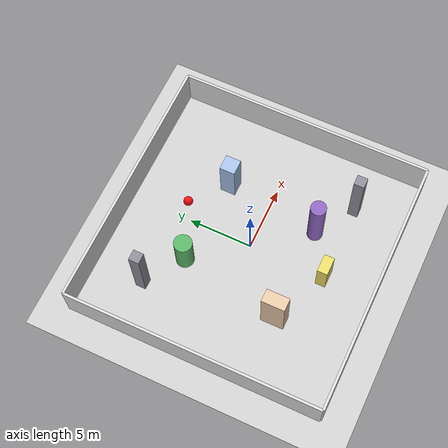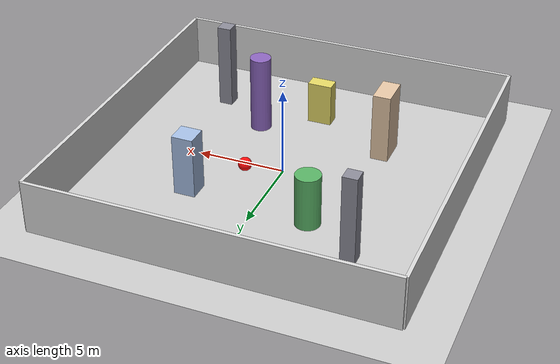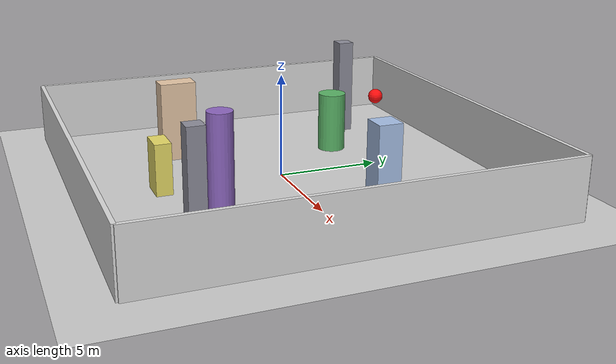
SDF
<?xml version="1.0" ?>
<sdf version="1.6">
  <world name="three_aerial_world">
    <gravity>0 0 -9.8</gravity>

    <scene>
      <ambient>0.55 0.55 0.55 1.0</ambient>
      <background>0.80 0.90 1.00 1.0</background>
      <shadows>true</shadows>
    </scene>

    <include>
      <uri>model://ground_plane</uri>
    </include>

    <include>
      <uri>model://sun</uri>
    </include>

    <physics type="ode">
      <real_time_update_rate>1000.0</real_time_update_rate>
      <max_step_size>0.001</max_step_size>
      <real_time_factor>1.0</real_time_factor>
    </physics>

    <plugin name="gazebo_ros_state" filename="libgazebo_ros_state.so">
      <ros>
        <namespace>/gazebo</namespace>
      </ros>
      <update_rate>50.0</update_rate>
    </plugin>

    <!-- Fence walls: 20 m x 20 m arena, 1.5 m tall                       -->

    <model name="wall_north">
      <static>true</static>
      <pose>0 10 1.5 0 0 0</pose>
      <link name="link">
        <collision name="collision">
          <geometry><box><size>20 0.2 3.0</size></box></geometry>
        </collision>
        <visual name="visual">
          <geometry><box><size>20 0.2 3.0</size></box></geometry>
          <material>
            <ambient>0.85 0.85 0.85 1.0</ambient>
            <diffuse>0.85 0.85 0.85 1.0</diffuse>
          </material>
        </visual>
      </link>
    </model>

    <model name="wall_south">
      <static>true</static>
      <pose>0 -10 1.5 0 0 0</pose>
      <link name="link">
        <collision name="collision">
          <geometry><box><size>20 0.2 3.0</size></box></geometry>
        </collision>
        <visual name="visual">
          <geometry><box><size>20 0.2 3.0</size></box></geometry>
          <material>
            <ambient>0.85 0.85 0.85 1.0</ambient>
            <diffuse>0.85 0.85 0.85 1.0</diffuse>
          </material>
        </visual>
      </link>
    </model>

    <model name="wall_east">
      <static>true</static>
      <pose>10 0 1.5 0 0 0</pose>
      <link name="link">
        <collision name="collision">
          <geometry><box><size>0.2 20 3.0</size></box></geometry>
        </collision>
        <visual name="visual">
          <geometry><box><size>0.2 20 3.0</size></box></geometry>
          <material>
            <ambient>0.85 0.85 0.85 1.0</ambient>
            <diffuse>0.85 0.85 0.85 1.0</diffuse>
          </material>
        </visual>
      </link>
    </model>

    <model name="wall_west">
      <static>true</static>
      <pose>-10 0 1.5 0 0 0</pose>
      <link name="link">
        <collision name="collision">
          <geometry><box><size>0.2 20 3.0</size></box></geometry>
        </collision>
        <visual name="visual">
          <geometry><box><size>0.2 20 3.0</size></box></geometry>
          <material>
            <ambient>0.85 0.85 0.85 1.0</ambient>
            <diffuse>0.85 0.85 0.85 1.0</diffuse>
          </material>
        </visual>
      </link>
    </model>

    <!-- Obstacles                                                         -->
    <!-- IMPORTANT: the launch file contains a hard-coded copy of each    -->
    <!-- obstacle footprint (x, y, safe_radius) for random drone spawn    -->
    <!-- collision avoidance. Keep the two in sync!                        -->

    <!-- The red target is at z=3.5, so some obstacles are taller than it
         (force lateral detour) and some are shorter (could fly over). -->

    <model name="obstacle_block_blue">
      <static>true</static>
      <pose>4.0 3.5 1.75 0 0 0</pose>
      <link name="link">
        <collision name="collision">
          <geometry><box><size>1.2 1.2 3.5</size></box></geometry>
        </collision>
        <visual name="visual">
          <geometry><box><size>1.2 1.2 3.5</size></box></geometry>
          <material>
            <ambient>0.65 0.75 0.90 1.0</ambient>
            <diffuse>0.65 0.75 0.90 1.0</diffuse>
          </material>
        </visual>
      </link>
    </model>

    <model name="obstacle_block_orange">
      <static>true</static>
      <pose>-4.5 -4.0 2.0 0 0 0</pose>
      <link name="link">
        <collision name="collision">
          <geometry><box><size>1.0 1.8 4.0</size></box></geometry>
        </collision>
        <visual name="visual">
          <geometry><box><size>1.0 1.8 4.0</size></box></geometry>
          <material>
            <ambient>0.90 0.78 0.65 1.0</ambient>
            <diffuse>0.90 0.78 0.65 1.0</diffuse>
          </material>
        </visual>
      </link>
    </model>

    <model name="obstacle_cylinder_green">
      <static>true</static>
      <pose>-3.0 4.0 1.5 0 0 0</pose>
      <link name="link">
        <collision name="collision">
          <geometry><cylinder><radius>0.7</radius><length>3.0</length></cylinder></geometry>
        </collision>
        <visual name="visual">
          <geometry><cylinder><radius>0.7</radius><length>3.0</length></cylinder></geometry>
          <material>
            <ambient>0.35 0.70 0.40 1.0</ambient>
            <diffuse>0.35 0.70 0.40 1.0</diffuse>
          </material>
        </visual>
      </link>
    </model>

    <model name="obstacle_cylinder_purple">
      <static>true</static>
      <pose>3.0 -4.0 2.25 0 0 0</pose>
      <link name="link">
        <collision name="collision">
          <geometry><cylinder><radius>0.6</radius><length>4.5</length></cylinder></geometry>
        </collision>
        <visual name="visual">
          <geometry><cylinder><radius>0.6</radius><length>4.5</length></cylinder></geometry>
          <material>
            <ambient>0.55 0.40 0.75 1.0</ambient>
            <diffuse>0.55 0.40 0.75 1.0</diffuse>
          </material>
        </visual>
      </link>
    </model>

    <model name="obstacle_pillar_1">
      <static>true</static>
      <pose>6.0 -6.0 2.5 0 0 0</pose>
      <link name="link">
        <collision name="collision">
          <geometry><box><size>0.8 0.8 5.0</size></box></geometry>
        </collision>
        <visual name="visual">
          <geometry><box><size>0.8 0.8 5.0</size></box></geometry>
          <material>
            <ambient>0.55 0.55 0.60 1.0</ambient>
            <diffuse>0.55 0.55 0.60 1.0</diffuse>
          </material>
        </visual>
      </link>
    </model>

    <model name="obstacle_pillar_2">
      <static>true</static>
      <pose>-6.0 6.0 2.5 0 0 0</pose>
      <link name="link">
        <collision name="collision">
          <geometry><box><size>0.8 0.8 5.0</size></box></geometry>
        </collision>
        <visual name="visual">
          <geometry><box><size>0.8 0.8 5.0</size></box></geometry>
          <material>
            <ambient>0.55 0.55 0.60 1.0</ambient>
            <diffuse>0.55 0.55 0.60 1.0</diffuse>
          </material>
        </visual>
      </link>
    </model>

    <model name="obstacle_short_box">
      <static>true</static>
      <pose>0.0 -6.0 1.25 0 0 0</pose>
      <link name="link">
        <collision name="collision">
          <geometry><box><size>1.4 0.8 2.5</size></box></geometry>
        </collision>
        <visual name="visual">
          <geometry><box><size>1.4 0.8 2.5</size></box></geometry>
          <material>
            <ambient>0.90 0.85 0.40 1.0</ambient>
            <diffuse>0.90 0.85 0.40 1.0</diffuse>
          </material>
        </visual>
      </link>
    </model>

    <!-- Single red target marker in the sky. All three drones fly here.  -->
    <!-- IMPORTANT: keep coordinates in sync with launch file's TARGET.    -->

    <model name="target_marker">
      <static>true</static>
      <pose>0 5 3.5 0 0 0</pose>
      <link name="link">
        <visual name="visual">
          <geometry>
            <sphere>
              <radius>0.35</radius>
            </sphere>
          </geometry>
          <material>
            <ambient>1.0 0.05 0.05 1.0</ambient>
            <diffuse>1.0 0.05 0.05 1.0</diffuse>
            <specular>0.2 0.0 0.0 1.0</specular>
            <emissive>0.6 0.0 0.0 1.0</emissive>
          </material>
        </visual>
      </link>
    </model>
  </world>
</sdf>
